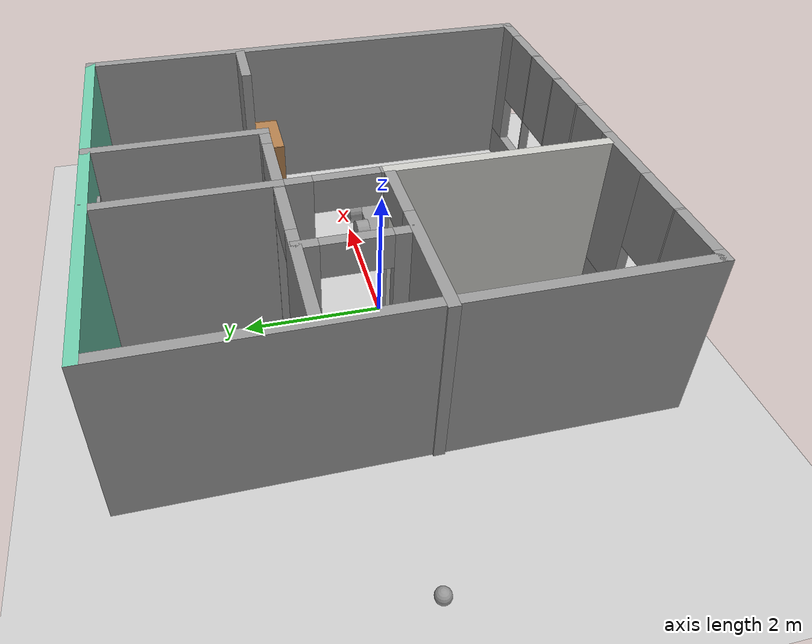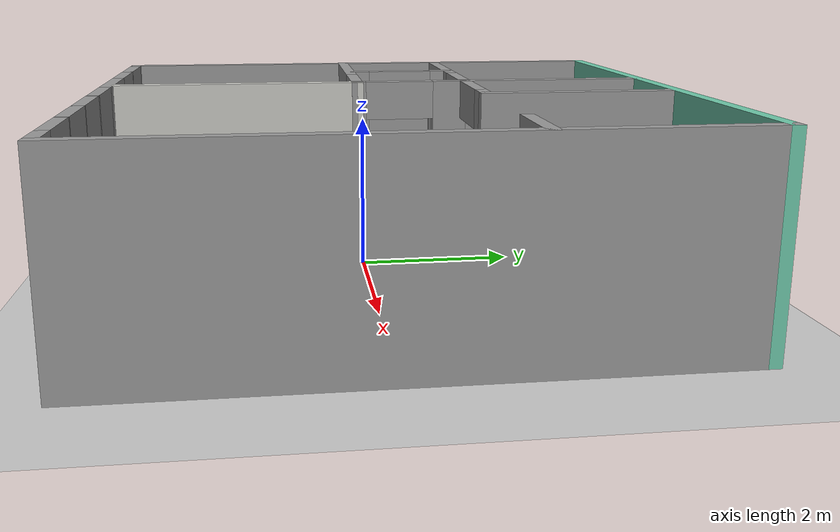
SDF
<sdf version="1.6">
 <world name="default">
  <plugin name="hello" filename="libhello.so"/>
  <plugin filename="libcollision_map_creator.so" name="collision_map_creator"/>
  <light name="sun" type="directional">
   <pose>0 0 10 0 -0 0</pose>
   <diffuse>0.8 0.8 0.8 1</diffuse>
   <specular>0.2 0.2 0.2 1</specular>
   <attenuation>
    <range>1000</range>
    <constant>0.9</constant>
    <linear>0.01</linear>
    <quadratic>0.001</quadratic>
   </attenuation>
   <direction>-0.5 0.1 -0.9</direction>
  </light>
  <model name="ground_plane">
   <static>1</static>
   <link name="link">
    <collision name="collision">
     <geometry><plane><normal>0 0 1</normal><size>100 100</size></plane></geometry>
     <surface>
      <contact><collide_bitmask>65535</collide_bitmask></contact>
      <friction><ode><mu>100</mu><mu2>50</mu2></ode></friction>
     </surface>
    </collision>
    <visual name="visual">
     <cast_shadows>0</cast_shadows>
     <geometry><plane><normal>0 0 1</normal><size>100 100</size></plane></geometry>
     <material>
      <script><uri>file://media/materials/scripts/gazebo.material</uri><name>Gazebo/Grey</name></script>
     </material>
    </visual>
   </link>
  </model>
  <gravity>0 0 -9.8</gravity>
  <magnetic_field>6e-06 2.3e-05 -4.2e-05</magnetic_field>
  <atmosphere type="adiabatic"/>
  <physics name="default_physics" default="0" type="ode">
   <max_step_size>0.001</max_step_size>
   <real_time_factor>1</real_time_factor>
   <real_time_update_rate>1000</real_time_update_rate>
  </physics>
  <scene><ambient>0.4 0.4 0.4 1</ambient><background>0.7 0.7 0.7 1</background><shadows>1</shadows></scene>
  <spherical_coordinates>
   <surface_model>EARTH_WGS84</surface_model>
   <latitude_deg>0</latitude_deg>
   <longitude_deg>0</longitude_deg>
   <elevation>0</elevation>
   <heading_deg>0</heading_deg>
  </spherical_coordinates>
  <model name="house">
   <pose>0.65385 0.2613 0 0 -0 0</pose>
   <link name="Door_0">
    <collision name="Door_0_Collision">
     <geometry><box><size>0.884877 0.2 2</size></box></geometry>
     <pose>0 0 1 0 -0 0</pose>
    </collision>
    <visual name="Door_0_Visual">
     <pose>0 0 1 0 -0 0</pose>
     <geometry><box><size>0.884877 0.2 2</size></box></geometry>
     <material>
      <script><uri>file://media/materials/scripts/gazebo.material</uri><name>Gazebo/Grey</name></script>
     </material>
    </visual>
    <pose>-0.176351 3.52946 0 0 -0 0</pose>
   </link>
   <link name="Wall_10">
    <pose>-1.96312 1.12976 0 0 -0 3.14159</pose>
    <visual name="Wall_10_Visual_0">
     <pose>-1.2103 0 1.25 0 -0 0</pose>
     <geometry><box><size>0.079392 0.15 2.5</size></box></geometry>
     <material>
      <script><uri>file://media/materials/scripts/gazebo.material</uri><name>Gazebo/Grey</name></script>
      <ambient>1 1 1 1</ambient>
     </material>
     <meta><layer>0</layer></meta>
    </visual>
    <collision name="Wall_10_Collision_0">
     <geometry><box><size>0.079392 0.15 2.5</size></box></geometry>
     <pose>-1.2103 0 1.25 0 -0 0</pose>
    </collision>
    <visual name="Wall_10_Visual_1">
     <pose>0.489696 0 1.25 0 -0 0</pose>
     <geometry><box><size>1.52061 0.15 2.5</size></box></geometry>
     <material>
      <script><uri>file://media/materials/scripts/gazebo.material</uri><name>Gazebo/Grey</name></script>
      <ambient>1 1 1 1</ambient>
     </material>
     <meta><layer>0</layer></meta>
    </visual>
    <collision name="Wall_10_Collision_1">
     <geometry><box><size>1.52061 0.15 2.5</size></box></geometry>
     <pose>0.489696 0 1.25 0 -0 0</pose>
    </collision>
    <visual name="Wall_10_Visual_2">
     <pose>-0.720608 0 2.25 0 -0 0</pose>
     <geometry><box><size>0.9 0.15 0.5</size></box></geometry>
     <material>
      <script><uri>file://media/materials/scripts/gazebo.material</uri><name>Gazebo/Grey</name></script>
      <ambient>1 1 1 1</ambient>
     </material>
     <meta><layer>0</layer></meta>
    </visual>
    <collision name="Wall_10_Collision_2">
     <geometry><box><size>0.9 0.15 0.5</size></box></geometry>
     <pose>-0.720608 0 2.25 0 -0 0</pose>
    </collision>
   </link>
   <link name="Wall_19">
    <collision name="Wall_19_Collision">
     <geometry><box><size>2.57 0.15 2.5</size></box></geometry>
     <pose>0 0 1.25 0 -0 0</pose>
    </collision>
    <visual name="Wall_19_Visual">
     <pose>0 0 1.25 0 -0 0</pose>
     <geometry><box><size>2.57 0.15 2.5</size></box></geometry>
     <material>
      <script><uri>file://media/materials/scripts/gazebo.material</uri><name>Gazebo/Grey</name></script>
      <ambient>1 1 1 1</ambient>
     </material>
     <meta><layer>0</layer></meta>
    </visual>
    <pose>-0.7005 2.33796 0 0 0 -1.5708</pose>
   </link>
   <link name="Wall_25">
    <pose>-0.106 1.12846 0 0 -0 0.000841</pose>
    <visual name="Wall_25_Visual_0">
     <pose>-0.594867 0 1.25 0 -0 0</pose>
     <geometry><box><size>0.149267 0.15 2.5</size></box></geometry>
     <material>
      <script><uri>file://media/materials/scripts/gazebo.material</uri><name>Gazebo/Grey</name></script>
      <ambient>1 1 1 1</ambient>
     </material>
     <meta><layer>0</layer></meta>
    </visual>
    <collision name="Wall_25_Collision_0">
     <geometry><box><size>0.149267 0.15 2.5</size></box></geometry>
     <pose>-0.594867 0 1.25 0 -0 0</pose>
    </collision>
    <visual name="Wall_25_Visual_1">
     <pose>0.532227 0 1.25 0 -0 0</pose>
     <geometry><box><size>0.274547 0.15 2.5</size></box></geometry>
     <material>
      <script><uri>file://media/materials/scripts/gazebo.material</uri><name>Gazebo/Grey</name></script>
      <ambient>1 1 1 1</ambient>
     </material>
     <meta><layer>0</layer></meta>
    </visual>
    <collision name="Wall_25_Collision_1">
     <geometry><box><size>0.274547 0.15 2.5</size></box></geometry>
     <pose>0.532227 0 1.25 0 -0 0</pose>
    </collision>
    <visual name="Wall_25_Visual_2">
     <pose>-0.06264 0 2.25 0 -0 0</pose>
     <geometry><box><size>0.915186 0.15 0.5</size></box></geometry>
     <material>
      <script><uri>file://media/materials/scripts/gazebo.material</uri><name>Gazebo/Grey</name></script>
      <ambient>1 1 1 1</ambient>
     </material>
     <meta><layer>0</layer></meta>
    </visual>
    <collision name="Wall_25_Collision_2">
     <geometry><box><size>0.915186 0.15 0.5</size></box></geometry>
     <pose>-0.06264 0 2.25 0 -0 0</pose>
    </collision>
   </link>
   <link name="Wall_27">
    <collision name="Wall_27_Collision">
     <geometry><box><size>6.75 0.15 2.5</size></box></geometry>
     <pose>0 0 1.25 0 -0 0</pose>
    </collision>
    <visual name="Wall_27_Visual">
     <pose>0 0 1.25 0 -0 0</pose>
     <geometry><box><size>6.75 0.15 2.5</size></box></geometry>
     <material>
      <script><uri>file://media/materials/scripts/gazebo.material</uri><name>Gazebo/Grey</name></script>
      <ambient>0.435294 0.796078 0.67451 1</ambient>
     </material>
     <meta><layer>0</layer></meta>
    </visual>
    <pose>0.0145 3.54996 0 0 -0 0</pose>
   </link>
   <link name="Wall_29">
    <collision name="Wall_29_Collision">
     <geometry><box><size>2.57 0.15 2.5</size></box></geometry>
     <pose>0 0 1.25 0 -0 0</pose>
    </collision>
    <visual name="Wall_29_Visual">
     <pose>0 0 1.25 0 -0 0</pose>
     <geometry><box><size>2.57 0.15 2.5</size></box></geometry>
     <material>
      <script><uri>file://media/materials/scripts/gazebo.material</uri><name>Gazebo/Grey</name></script>
      <ambient>1 1 1 1</ambient>
     </material>
     <meta><layer>0</layer></meta>
    </visual>
    <pose>0.632722 2.33459 0 0 0 -1.5708</pose>
   </link>
   <link name="Wall_3">
    <collision name="Wall_3_Collision">
     <geometry><box><size>7.25 0.15 2.5</size></box></geometry>
     <pose>0 0 1.25 0 -0 0</pose>
    </collision>
    <visual name="Wall_3_Visual">
     <pose>0 0 1.25 0 -0 0</pose>
     <geometry><box><size>7.25 0.15 2.5</size></box></geometry>
     <material>
      <script><uri>file://media/materials/scripts/gazebo.material</uri><name>Gazebo/Grey</name></script>
      <ambient>1 1 1 1</ambient>
     </material>
     <meta><layer>0</layer></meta>
    </visual>
    <pose>-3.28566 3.7e-05 0 0 0 -1.57084</pose>
   </link>
   <link name="Wall_31">
    <pose>-2.0005 -0.327039 0 0 -0 0</pose>
    <visual name="Wall_31_Visual_0">
     <pose>-0.516104 0 1.25 0 -0 0</pose>
     <geometry><box><size>1.74579 0.15 2.5</size></box></geometry>
     <material>
      <script><uri>file://media/materials/scripts/gazebo.material</uri><name>Gazebo/Grey</name></script>
      <ambient>1 1 1 1</ambient>
     </material>
     <meta><layer>0</layer></meta>
    </visual>
    <collision name="Wall_31_Collision_0">
     <geometry><box><size>1.74579 0.15 2.5</size></box></geometry>
     <pose>-0.516104 0 1.25 0 -0 0</pose>
    </collision>
    <visual name="Wall_31_Visual_1">
     <pose>1.3229 0 1.25 0 -0 0</pose>
     <geometry><box><size>0.132207 0.15 2.5</size></box></geometry>
     <material>
      <script><uri>file://media/materials/scripts/gazebo.material</uri><name>Gazebo/Grey</name></script>
      <ambient>1 1 1 1</ambient>
     </material>
     <meta><layer>0</layer></meta>
    </visual>
    <collision name="Wall_31_Collision_1">
     <geometry><box><size>0.132207 0.15 2.5</size></box></geometry>
     <pose>1.3229 0 1.25 0 -0 0</pose>
    </collision>
    <visual name="Wall_31_Visual_2">
     <pose>0.806793 0 2.25 0 -0 0</pose>
     <geometry><box><size>0.9 0.15 0.5</size></box></geometry>
     <material>
      <script><uri>file://media/materials/scripts/gazebo.material</uri><name>Gazebo/Grey</name></script>
      <ambient>1 1 1 1</ambient>
     </material>
     <meta><layer>0</layer></meta>
    </visual>
    <collision name="Wall_31_Collision_2">
     <geometry><box><size>0.9 0.15 0.5</size></box></geometry>
     <pose>0.806793 0 2.25 0 -0 0</pose>
    </collision>
   </link>
   <link name="Wall_35">
    <pose>-1.99683 0.434803 0 0 0 -1.5708</pose>
    <visual name="Wall_35_Visual_0">
     <pose>-0.585369 0 1.25 0 -0 0</pose>
     <geometry><box><size>0.329262 0.15 2.5</size></box></geometry>
     <material>
      <script><uri>file://media/materials/scripts/gazebo.material</uri><name>Gazebo/Grey</name></script>
      <ambient>1 1 1 1</ambient>
     </material>
     <meta><layer>0</layer></meta>
    </visual>
    <collision name="Wall_35_Collision_0">
     <geometry><box><size>0.329262 0.15 2.5</size></box></geometry>
     <pose>-0.585369 0 1.25 0 -0 0</pose>
    </collision>
    <visual name="Wall_35_Visual_1">
     <pose>0.614631 0 1.25 0 -0 0</pose>
     <geometry><box><size>0.270738 0.15 2.5</size></box></geometry>
     <material>
      <script><uri>file://media/materials/scripts/gazebo.material</uri><name>Gazebo/Grey</name></script>
      <ambient>1 1 1 1</ambient>
     </material>
     <meta><layer>0</layer></meta>
    </visual>
    <collision name="Wall_35_Collision_1">
     <geometry><box><size>0.270738 0.15 2.5</size></box></geometry>
     <pose>0.614631 0 1.25 0 -0 0</pose>
    </collision>
    <visual name="Wall_35_Visual_2">
     <pose>0.029262 0 2.25 0 -0 0</pose>
     <geometry><box><size>0.9 0.15 0.5</size></box></geometry>
     <material>
      <script><uri>file://media/materials/scripts/gazebo.material</uri><name>Gazebo/Grey</name></script>
      <ambient>1 1 1 1</ambient>
     </material>
     <meta><layer>0</layer></meta>
    </visual>
    <collision name="Wall_35_Collision_2">
     <geometry><box><size>0.9 0.15 0.5</size></box></geometry>
     <pose>0.029262 0 2.25 0 -0 0</pose>
    </collision>
   </link>
   <link name="Wall_37">
    <collision name="Wall_37_Collision">
     <geometry><box><size>3.25 0.15 2.5</size></box></geometry>
     <pose>0 0 1.25 0 -0 0</pose>
    </collision>
    <visual name="Wall_37_Visual">
     <pose>0 0 1.25 0 -0 0</pose>
     <geometry><box><size>3.25 0.15 2.5</size></box></geometry>
     <material>
      <script><uri>file://media/materials/scripts/gazebo.material</uri><name>Gazebo/CeilingTiled</name></script>
      <ambient>1 1 1 1</ambient>
     </material>
     <meta><layer>0</layer></meta>
    </visual>
    <pose>-0.6865 -1.87704 0 0 0 -1.5708</pose>
   </link>
   <link name="Wall_39">
    <collision name="Wall_39_Collision">
     <geometry><box><size>1 0.15 2.5</size></box></geometry>
     <pose>0 0 1.25 0 -0 0</pose>
    </collision>
    <visual name="Wall_39_Visual">
     <pose>0 0 1.25 0 -0 0</pose>
     <geometry><box><size>1 0.15 2.5</size></box></geometry>
     <material>
      <script><uri>file://media/materials/scripts/gazebo.material</uri><name>Gazebo/Grey</name></script>
      <ambient>1 1 1 1</ambient>
     </material>
     <meta><layer>0</layer></meta>
    </visual>
    <pose>2.88759 1.15517 0 0 -0 0</pose>
   </link>
   <link name="Wall_4">
    <pose>0.014343 -3.54996 0 0 0 -2.3e-05</pose>
    <visual name="Wall_4_Visual_0">
     <pose>-3.27185 0 1.25 0 -0 0</pose>
     <geometry><box><size>0.206299 0.15 2.5</size></box></geometry>
     <material>
      <script><uri>file://media/materials/scripts/gazebo.material</uri><name>Gazebo/Grey</name></script>
      <ambient>1 1 1 1</ambient>
     </material>
     <meta><layer>0</layer></meta>
    </visual>
    <collision name="Wall_4_Collision_0">
     <geometry><box><size>0.206299 0.15 2.5</size></box></geometry>
     <pose>-3.27185 0 1.25 0 -0 0</pose>
    </collision>
    <visual name="Wall_4_Visual_1">
     <pose>0.10315 0 0.25 0 -0 0</pose>
     <geometry><box><size>6.5437 0.15 0.5</size></box></geometry>
     <material>
      <script><uri>file://media/materials/scripts/gazebo.material</uri><name>Gazebo/Grey</name></script>
      <ambient>1 1 1 1</ambient>
     </material>
     <meta><layer>0</layer></meta>
    </visual>
    <collision name="Wall_4_Collision_1">
     <geometry><box><size>6.5437 0.15 0.5</size></box></geometry>
     <pose>0.10315 0 0.25 0 -0 0</pose>
    </collision>
    <visual name="Wall_4_Visual_2">
     <pose>-2.35468 0 1.5 0 -0 0</pose>
     <geometry><box><size>0.02804 0.15 2</size></box></geometry>
     <material>
      <script><uri>file://media/materials/scripts/gazebo.material</uri><name>Gazebo/Grey</name></script>
      <ambient>1 1 1 1</ambient>
     </material>
     <meta><layer>0</layer></meta>
    </visual>
    <collision name="Wall_4_Collision_2">
     <geometry><box><size>0.02804 0.15 2</size></box></geometry>
     <pose>-2.35468 0 1.5 0 -0 0</pose>
    </collision>
    <visual name="Wall_4_Visual_3">
     <pose>-1.00912 0 1.5 0 -0 0</pose>
     <geometry><box><size>1.06309 0.15 2</size></box></geometry>
     <material>
      <script><uri>file://media/materials/scripts/gazebo.material</uri><name>Gazebo/Grey</name></script>
      <ambient>1 1 1 1</ambient>
     </material>
     <meta><layer>0</layer></meta>
    </visual>
    <collision name="Wall_4_Collision_3">
     <geometry><box><size>1.06309 0.15 2</size></box></geometry>
     <pose>-1.00912 0 1.5 0 -0 0</pose>
    </collision>
    <visual name="Wall_4_Visual_4">
     <pose>0.347948 0 1.5 0 -0 0</pose>
     <geometry><box><size>0.05104 0.15 2</size></box></geometry>
     <material>
      <script><uri>file://media/materials/scripts/gazebo.material</uri><name>Gazebo/Grey</name></script>
      <ambient>1 1 1 1</ambient>
     </material>
     <meta><layer>0</layer></meta>
    </visual>
    <collision name="Wall_4_Collision_4">
     <geometry><box><size>0.05104 0.15 2</size></box></geometry>
     <pose>0.347948 0 1.5 0 -0 0</pose>
    </collision>
    <visual name="Wall_4_Visual_5">
     <pose>1.18749 0 1.5 0 -0 0</pose>
     <geometry><box><size>0.02804 0.15 2</size></box></geometry>
     <material>
      <script><uri>file://media/materials/scripts/gazebo.material</uri><name>Gazebo/Grey</name></script>
      <ambient>1 1 1 1</ambient>
     </material>
     <meta><layer>0</layer></meta>
    </visual>
    <collision name="Wall_4_Collision_5">
     <geometry><box><size>0.02804 0.15 2</size></box></geometry>
     <pose>1.18749 0 1.5 0 -0 0</pose>
    </collision>
    <visual name="Wall_4_Visual_6">
     <pose>2.01553 0 1.5 0 -0 0</pose>
     <geometry><box><size>0.028039 0.15 2</size></box></geometry>
     <material>
      <script><uri>file://media/materials/scripts/gazebo.material</uri><name>Gazebo/Grey</name></script>
      <ambient>1 1 1 1</ambient>
     </material>
     <meta><layer>0</layer></meta>
    </visual>
    <collision name="Wall_4_Collision_6">
     <geometry><box><size>0.028039 0.15 2</size></box></geometry>
     <pose>2.01553 0 1.5 0 -0 0</pose>
    </collision>
    <visual name="Wall_4_Visual_7">
     <pose>3.10227 0 1.5 0 -0 0</pose>
     <geometry><box><size>0.545453 0.15 2</size></box></geometry>
     <material>
      <script><uri>file://media/materials/scripts/gazebo.material</uri><name>Gazebo/Grey</name></script>
      <ambient>1 1 1 1</ambient>
     </material>
     <meta><layer>0</layer></meta>
    </visual>
    <collision name="Wall_4_Collision_7">
     <geometry><box><size>0.545453 0.15 2</size></box></geometry>
     <pose>3.10227 0 1.5 0 -0 0</pose>
    </collision>
    <visual name="Wall_4_Visual_8">
     <pose>-2.7687 0 1.9 0 -0 0</pose>
     <geometry><box><size>0.8 0.15 1.2</size></box></geometry>
     <material>
      <script><uri>file://media/materials/scripts/gazebo.material</uri><name>Gazebo/Grey</name></script>
      <ambient>1 1 1 1</ambient>
     </material>
     <meta><layer>0</layer></meta>
    </visual>
    <collision name="Wall_4_Collision_8">
     <geometry><box><size>0.8 0.15 1.2</size></box></geometry>
     <pose>-2.7687 0 1.9 0 -0 0</pose>
    </collision>
    <visual name="Wall_4_Visual_9">
     <pose>-1.94066 0 1.9 0 -0 0</pose>
     <geometry><box><size>0.8 0.15 1.2</size></box></geometry>
     <material>
      <script><uri>file://media/materials/scripts/gazebo.material</uri><name>Gazebo/Grey</name></script>
      <ambient>1 1 1 1</ambient>
     </material>
     <meta><layer>0</layer></meta>
    </visual>
    <collision name="Wall_4_Collision_9">
     <geometry><box><size>0.8 0.15 1.2</size></box></geometry>
     <pose>-1.94066 0 1.9 0 -0 0</pose>
    </collision>
    <visual name="Wall_4_Visual_10">
     <pose>-0.077572 0 1.9 0 -0 0</pose>
     <geometry><box><size>0.8 0.15 1.2</size></box></geometry>
     <material>
      <script><uri>file://media/materials/scripts/gazebo.material</uri><name>Gazebo/Grey</name></script>
      <ambient>1 1 1 1</ambient>
     </material>
     <meta><layer>0</layer></meta>
    </visual>
    <collision name="Wall_4_Collision_10">
     <geometry><box><size>0.8 0.15 1.2</size></box></geometry>
     <pose>-0.077572 0 1.9 0 -0 0</pose>
    </collision>
    <visual name="Wall_4_Visual_11">
     <pose>0.773468 0 1.9 0 -0 0</pose>
     <geometry><box><size>0.8 0.15 1.2</size></box></geometry>
     <material>
      <script><uri>file://media/materials/scripts/gazebo.material</uri><name>Gazebo/Grey</name></script>
      <ambient>1 1 1 1</ambient>
     </material>
     <meta><layer>0</layer></meta>
    </visual>
    <collision name="Wall_4_Collision_11">
     <geometry><box><size>0.8 0.15 1.2</size></box></geometry>
     <pose>0.773468 0 1.9 0 -0 0</pose>
    </collision>
    <visual name="Wall_4_Visual_12">
     <pose>1.60151 0 1.9 0 -0 0</pose>
     <geometry><box><size>0.8 0.15 1.2</size></box></geometry>
     <material>
      <script><uri>file://media/materials/scripts/gazebo.material</uri><name>Gazebo/Grey</name></script>
      <ambient>1 1 1 1</ambient>
     </material>
     <meta><layer>0</layer></meta>
    </visual>
    <collision name="Wall_4_Collision_12">
     <geometry><box><size>0.8 0.15 1.2</size></box></geometry>
     <pose>1.60151 0 1.9 0 -0 0</pose>
    </collision>
    <visual name="Wall_4_Visual_13">
     <pose>2.42955 0 1.9 0 -0 0</pose>
     <geometry><box><size>0.8 0.15 1.2</size></box></geometry>
     <material>
      <script><uri>file://media/materials/scripts/gazebo.material</uri><name>Gazebo/Grey</name></script>
      <ambient>1 1 1 1</ambient>
     </material>
     <meta><layer>0</layer></meta>
    </visual>
    <collision name="Wall_4_Collision_13">
     <geometry><box><size>0.8 0.15 1.2</size></box></geometry>
     <pose>2.42955 0 1.9 0 -0 0</pose>
    </collision>
   </link>
   <link name="Wall_42">
    <pose>-0.6935 0.400461 0 0 -0 1.58042</pose>
    <visual name="Wall_42_Visual_0">
     <pose>-0.709609 0 1.25 0 -0 0</pose>
     <geometry><box><size>0.18585 0.15 2.5</size></box></geometry>
     <material>
      <script><uri>file://media/materials/scripts/gazebo.material</uri><name>Gazebo/Grey</name></script>
      <ambient>1 1 1 1</ambient>
     </material>
     <meta><layer>0</layer></meta>
    </visual>
    <collision name="Wall_42_Collision_0">
     <geometry><box><size>0.18585 0.15 2.5</size></box></geometry>
     <pose>-0.709609 0 1.25 0 -0 0</pose>
    </collision>
    <visual name="Wall_42_Visual_1">
     <pose>0.542925 0 1.25 0 -0 0</pose>
     <geometry><box><size>0.519217 0.15 2.5</size></box></geometry>
     <material>
      <script><uri>file://media/materials/scripts/gazebo.material</uri><name>Gazebo/Grey</name></script>
      <ambient>1 1 1 1</ambient>
     </material>
     <meta><layer>0</layer></meta>
    </visual>
    <collision name="Wall_42_Collision_1">
     <geometry><box><size>0.519217 0.15 2.5</size></box></geometry>
     <pose>0.542925 0 1.25 0 -0 0</pose>
    </collision>
    <visual name="Wall_42_Visual_2">
     <pose>-0.166683 0 2.25 0 -0 0</pose>
     <geometry><box><size>0.9 0.15 0.5</size></box></geometry>
     <material>
      <script><uri>file://media/materials/scripts/gazebo.material</uri><name>Gazebo/Grey</name></script>
      <ambient>1 1 1 1</ambient>
     </material>
     <meta><layer>0</layer></meta>
    </visual>
    <collision name="Wall_42_Collision_2">
     <geometry><box><size>0.9 0.15 0.5</size></box></geometry>
     <pose>-0.166683 0 2.25 0 -0 0</pose>
    </collision>
   </link>
   <link name="Wall_5">
    <collision name="Wall_5_Collision">
     <geometry><box><size>7.25 0.15 2.5</size></box></geometry>
     <pose>0 0 1.25 0 -0 0</pose>
    </collision>
    <visual name="Wall_5_Visual">
     <pose>0 0 1.25 0 -0 0</pose>
     <geometry><box><size>7.25 0.15 2.5</size></box></geometry>
     <material>
      <script><uri>file://media/materials/scripts/gazebo.material</uri><name>Gazebo/Grey</name></script>
      <ambient>1 1 1 1</ambient>
     </material>
     <meta><layer>0</layer></meta>
    </visual>
    <pose>3.3145 -3.9e-05 0 0 -0 1.5708</pose>
   </link>
   <static>1</static>
  </model>
  <model name="robot">
   <link name="link_0">
    <pose>-0 -0 -0.016 0 -0 0</pose>
    <inertial>
     <mass>1</mass>
     <inertia>
      <ixx>0.166667</ixx>
      <ixy>0</ixy>
      <ixz>0</ixz>
      <iyy>0.166667</iyy>
      <iyz>0</iyz>
      <izz>0.166667</izz>
     </inertia>
    </inertial>
    <visual name="visual">
     <geometry><box><size>1 1 0.2</size></box></geometry>
     <material>
      <lighting>1</lighting>
      <script><uri>file://media/materials/scripts/gazebo.material</uri><name>Gazebo/Grey</name></script>
      <shader type="pixel"><normal_map>__default__</normal_map></shader>
      <ambient>0.3 0.3 0.3 1</ambient>
      <diffuse>0.7 0.7 0.7 1</diffuse>
      <specular>0.01 0.01 0.01 1</specular>
      <emissive>0 0 0 1</emissive>
     </material>
    </visual>
    <collision name="collision">
     <geometry><box><size>1 1 0.2</size></box></geometry>
     <surface>
      <friction>
       <ode><mu>1</mu><mu2>1</mu2><fdir1>0 0 0</fdir1><slip1>0</slip1><slip2>0</slip2></ode>
       <torsional>
        <coefficient>1</coefficient>
        <patch_radius>0</patch_radius>
        <surface_radius>0</surface_radius>
        <use_patch_radius>1</use_patch_radius>
        <ode><slip>0</slip></ode>
       </torsional>
      </friction>
      <bounce><restitution_coefficient>0</restitution_coefficient><threshold>1e+06</threshold></bounce>
      <contact>
       <collide_without_contact>0</collide_without_contact>
       <collide_without_contact_bitmask>1</collide_without_contact_bitmask>
       <collide_bitmask>1</collide_bitmask>
       <ode>
        <soft_cfm>0</soft_cfm>
        <soft_erp>0.2</soft_erp>
        <kp>1e+13</kp>
        <kd>1</kd>
        <max_vel>0.01</max_vel>
        <min_depth>0</min_depth>
       </ode>
       <bullet>
        <split_impulse>1</split_impulse>
        <split_impulse_penetration_threshold>-0.01</split_impulse_penetration_threshold>
        <soft_cfm>0</soft_cfm>
        <soft_erp>0.2</soft_erp>
        <kp>1e+13</kp>
        <kd>1</kd>
       </bullet>
      </contact>
     </surface>
    </collision>
   </link>
   <link name="link_1">
    <pose>-0.3 -0.600001 0.004 1.5708 -0 0</pose>
    <inertial>
     <mass>1</mass>
     <inertia><ixx>0.145833</ixx><ixy>0</ixy><ixz>0</ixz><iyy>0.145833</iyy><iyz>0</iyz><izz>0.125</izz></inertia>
    </inertial>
    <visual name="visual">
     <geometry><cylinder><radius>0.2</radius><length>0.2</length></cylinder></geometry>
     <material>
      <lighting>1</lighting>
      <script><uri>file://media/materials/scripts/gazebo.material</uri><name>Gazebo/Grey</name></script>
      <shader type="pixel"><normal_map>__default__</normal_map></shader>
      <ambient>0.3 0.3 0.3 1</ambient>
      <diffuse>0.7 0.7 0.7 1</diffuse>
      <specular>0.01 0.01 0.01 1</specular>
      <emissive>0 0 0 1</emissive>
     </material>
    </visual>
    <collision name="collision">
     <geometry><cylinder><radius>0.2</radius><length>0.2</length></cylinder></geometry>
     <surface>
      <friction>
       <ode><mu>1</mu><mu2>1</mu2><fdir1>0 0 0</fdir1><slip1>0</slip1><slip2>0</slip2></ode>
       <torsional>
        <coefficient>1</coefficient>
        <patch_radius>0</patch_radius>
        <surface_radius>0</surface_radius>
        <use_patch_radius>1</use_patch_radius>
        <ode><slip>0</slip></ode>
       </torsional>
      </friction>
      <bounce><restitution_coefficient>0</restitution_coefficient><threshold>1e+06</threshold></bounce>
      <contact>
       <collide_without_contact>0</collide_without_contact>
       <collide_without_contact_bitmask>1</collide_without_contact_bitmask>
       <collide_bitmask>1</collide_bitmask>
       <ode>
        <soft_cfm>0</soft_cfm>
        <soft_erp>0.2</soft_erp>
        <kp>1e+13</kp>
        <kd>1</kd>
        <max_vel>0.01</max_vel>
        <min_depth>0</min_depth>
       </ode>
       <bullet>
        <split_impulse>1</split_impulse>
        <split_impulse_penetration_threshold>-0.01</split_impulse_penetration_threshold>
        <soft_cfm>0</soft_cfm>
        <soft_erp>0.2</soft_erp>
        <kp>1e+13</kp>
        <kd>1</kd>
       </bullet>
      </contact>
     </surface>
    </collision>
   </link>
   <link name="link_1_clone">
    <pose>0.3 0.600001 0.004 1.5708 -0 0</pose>
    <inertial>
     <mass>1</mass>
     <inertia><ixx>0.145833</ixx><ixy>0</ixy><ixz>0</ixz><iyy>0.145833</iyy><iyz>0</iyz><izz>0.125</izz></inertia>
    </inertial>
    <visual name="visual">
     <geometry><cylinder><radius>0.2</radius><length>0.2</length></cylinder></geometry>
     <material>
      <lighting>1</lighting>
      <script><uri>file://media/materials/scripts/gazebo.material</uri><name>Gazebo/Grey</name></script>
      <shader type="pixel"><normal_map>__default__</normal_map></shader>
      <ambient>0.3 0.3 0.3 1</ambient>
      <diffuse>0.7 0.7 0.7 1</diffuse>
      <specular>0.01 0.01 0.01 1</specular>
      <emissive>0 0 0 1</emissive>
     </material>
    </visual>
    <collision name="collision">
     <geometry><cylinder><radius>0.2</radius><length>0.2</length></cylinder></geometry>
     <surface>
      <friction>
       <ode><mu>1</mu><mu2>1</mu2><fdir1>0 0 0</fdir1><slip1>0</slip1><slip2>0</slip2></ode>
       <torsional>
        <coefficient>1</coefficient>
        <patch_radius>0</patch_radius>
        <surface_radius>0</surface_radius>
        <use_patch_radius>1</use_patch_radius>
        <ode><slip>0</slip></ode>
       </torsional>
      </friction>
      <bounce><restitution_coefficient>0</restitution_coefficient><threshold>1e+06</threshold></bounce>
      <contact>
       <collide_without_contact>0</collide_without_contact>
       <collide_without_contact_bitmask>1</collide_without_contact_bitmask>
       <collide_bitmask>1</collide_bitmask>
       <ode>
        <soft_cfm>0</soft_cfm>
        <soft_erp>0.2</soft_erp>
        <kp>1e+13</kp>
        <kd>1</kd>
        <max_vel>0.01</max_vel>
        <min_depth>0</min_depth>
       </ode>
       <bullet>
        <split_impulse>1</split_impulse>
        <split_impulse_penetration_threshold>-0.01</split_impulse_penetration_threshold>
        <soft_cfm>0</soft_cfm>
        <soft_erp>0.2</soft_erp>
        <kp>1e+13</kp>
        <kd>1</kd>
       </bullet>
      </contact>
     </surface>
    </collision>
   </link>
   <link name="link_1_clone_0">
    <pose>0.3 -0.600001 0.004 1.5708 -0 0</pose>
    <inertial>
     <mass>1</mass>
     <inertia><ixx>0.145833</ixx><ixy>0</ixy><ixz>0</ixz><iyy>0.145833</iyy><iyz>0</iyz><izz>0.125</izz></inertia>
    </inertial>
    <visual name="visual">
     <geometry><cylinder><radius>0.2</radius><length>0.2</length></cylinder></geometry>
     <material>
      <lighting>1</lighting>
      <script><uri>file://media/materials/scripts/gazebo.material</uri><name>Gazebo/Grey</name></script>
      <shader type="pixel"><normal_map>__default__</normal_map></shader>
      <ambient>0.3 0.3 0.3 1</ambient>
      <diffuse>0.7 0.7 0.7 1</diffuse>
      <specular>0.01 0.01 0.01 1</specular>
      <emissive>0 0 0 1</emissive>
     </material>
    </visual>
    <collision name="collision">
     <geometry><cylinder><radius>0.2</radius><length>0.2</length></cylinder></geometry>
     <surface>
      <friction>
       <ode><mu>1</mu><mu2>1</mu2><fdir1>0 0 0</fdir1><slip1>0</slip1><slip2>0</slip2></ode>
       <torsional>
        <coefficient>1</coefficient>
        <patch_radius>0</patch_radius>
        <surface_radius>0</surface_radius>
        <use_patch_radius>1</use_patch_radius>
        <ode><slip>0</slip></ode>
       </torsional>
      </friction>
      <bounce><restitution_coefficient>0</restitution_coefficient><threshold>1e+06</threshold></bounce>
      <contact>
       <collide_without_contact>0</collide_without_contact>
       <collide_without_contact_bitmask>1</collide_without_contact_bitmask>
       <collide_bitmask>1</collide_bitmask>
       <ode>
        <soft_cfm>0</soft_cfm>
        <soft_erp>0.2</soft_erp>
        <kp>1e+13</kp>
        <kd>1</kd>
        <max_vel>0.01</max_vel>
        <min_depth>0</min_depth>
       </ode>
       <bullet>
        <split_impulse>1</split_impulse>
        <split_impulse_penetration_threshold>-0.01</split_impulse_penetration_threshold>
        <soft_cfm>0</soft_cfm>
        <soft_erp>0.2</soft_erp>
        <kp>1e+13</kp>
        <kd>1</kd>
       </bullet>
      </contact>
     </surface>
    </collision>
   </link>
   <link name="link_1_clone_1">
    <pose>-0.3 0.600001 0.004 1.5708 -0 0</pose>
    <inertial>
     <mass>1</mass>
     <inertia><ixx>0.145833</ixx><ixy>0</ixy><ixz>0</ixz><iyy>0.145833</iyy><iyz>0</iyz><izz>0.125</izz></inertia>
    </inertial>
    <visual name="visual">
     <geometry><cylinder><radius>0.2</radius><length>0.2</length></cylinder></geometry>
     <material>
      <lighting>1</lighting>
      <script><uri>file://media/materials/scripts/gazebo.material</uri><name>Gazebo/Grey</name></script>
      <shader type="pixel"><normal_map>__default__</normal_map></shader>
      <ambient>0.3 0.3 0.3 1</ambient>
      <diffuse>0.7 0.7 0.7 1</diffuse>
      <specular>0.01 0.01 0.01 1</specular>
      <emissive>0 0 0 1</emissive>
     </material>
    </visual>
    <collision name="collision">
     <geometry><cylinder><radius>0.2</radius><length>0.2</length></cylinder></geometry>
     <surface>
      <friction>
       <ode><mu>1</mu><mu2>1</mu2><fdir1>0 0 0</fdir1><slip1>0</slip1><slip2>0</slip2></ode>
       <torsional>
        <coefficient>1</coefficient>
        <patch_radius>0</patch_radius>
        <surface_radius>0</surface_radius>
        <use_patch_radius>1</use_patch_radius>
        <ode><slip>0</slip></ode>
       </torsional>
      </friction>
      <bounce><restitution_coefficient>0</restitution_coefficient><threshold>1e+06</threshold></bounce>
      <contact>
       <collide_without_contact>0</collide_without_contact>
       <collide_without_contact_bitmask>1</collide_without_contact_bitmask>
       <collide_bitmask>1</collide_bitmask>
       <ode>
        <soft_cfm>0</soft_cfm>
        <soft_erp>0.2</soft_erp>
        <kp>1e+13</kp>
        <kd>1</kd>
        <max_vel>0.01</max_vel>
        <min_depth>0</min_depth>
       </ode>
       <bullet>
        <split_impulse>1</split_impulse>
        <split_impulse_penetration_threshold>-0.01</split_impulse_penetration_threshold>
        <soft_cfm>0</soft_cfm>
        <soft_erp>0.2</soft_erp>
        <kp>1e+13</kp>
        <kd>1</kd>
       </bullet>
      </contact>
     </surface>
    </collision>
   </link>
   <joint name="link_0_JOINT_0" type="revolute">
    <parent>link_0</parent>
    <child>link_1_clone</child>
    <axis>
     <xyz>0 0 1</xyz>
     <use_parent_model_frame>0</use_parent_model_frame>
     <limit>
      <lower>-1.79769e+308</lower>
      <upper>1.79769e+308</upper>
      <effort>-1</effort>
      <velocity>-1</velocity>
     </limit>
     <dynamics>
      <spring_reference>0</spring_reference>
      <spring_stiffness>0</spring_stiffness>
      <damping>0</damping>
     </dynamics>
    </axis>
    <physics>
     <ode><limit><cfm>0</cfm><erp>0.2</erp></limit><suspension><cfm>0</cfm><erp>0.2</erp></suspension></ode>
    </physics>
   </joint>
   <joint name="link_0_JOINT_1" type="revolute">
    <parent>link_0</parent>
    <child>link_1_clone_0</child>
    <axis>
     <xyz>0 0 1</xyz>
     <use_parent_model_frame>0</use_parent_model_frame>
     <limit>
      <lower>-1.79769e+308</lower>
      <upper>1.79769e+308</upper>
      <effort>-1</effort>
      <velocity>-1</velocity>
     </limit>
     <dynamics>
      <spring_reference>0</spring_reference>
      <spring_stiffness>0</spring_stiffness>
      <damping>0</damping>
     </dynamics>
    </axis>
    <physics>
     <ode><limit><cfm>0</cfm><erp>0.2</erp></limit><suspension><cfm>0</cfm><erp>0.2</erp></suspension></ode>
    </physics>
   </joint>
   <joint name="link_0_JOINT_2" type="revolute">
    <parent>link_0</parent>
    <child>link_1</child>
    <axis>
     <xyz>1 0 0</xyz>
     <use_parent_model_frame>0</use_parent_model_frame>
     <limit>
      <lower>-1.79769e+308</lower>
      <upper>1.79769e+308</upper>
      <effort>-1</effort>
      <velocity>-1</velocity>
     </limit>
     <dynamics>
      <spring_reference>0</spring_reference>
      <spring_stiffness>0</spring_stiffness>
      <damping>0</damping>
     </dynamics>
    </axis>
    <physics>
     <ode><limit><cfm>0</cfm><erp>0.2</erp></limit><suspension><cfm>0</cfm><erp>0.2</erp></suspension></ode>
    </physics>
   </joint>
   <joint name="link_0_JOINT_3" type="revolute">
    <parent>link_0</parent>
    <child>link_1</child>
    <axis>
     <xyz>0 0 1</xyz>
     <use_parent_model_frame>0</use_parent_model_frame>
     <limit>
      <lower>-1.79769e+308</lower>
      <upper>1.79769e+308</upper>
      <effort>-1</effort>
      <velocity>-1</velocity>
     </limit>
     <dynamics>
      <spring_reference>0</spring_reference>
      <spring_stiffness>0</spring_stiffness>
      <damping>0</damping>
     </dynamics>
    </axis>
    <physics>
     <ode><limit><cfm>0</cfm><erp>0.2</erp></limit><suspension><cfm>0</cfm><erp>0.2</erp></suspension></ode>
    </physics>
   </joint>
   <joint name="link_0_JOINT_5" type="revolute">
    <parent>link_0</parent>
    <child>link_1_clone_1</child>
    <axis>
     <xyz>0 0 1</xyz>
     <use_parent_model_frame>0</use_parent_model_frame>
     <limit>
      <lower>-1.79769e+308</lower>
      <upper>1.79769e+308</upper>
      <effort>-1</effort>
      <velocity>-1</velocity>
     </limit>
     <dynamics>
      <spring_reference>0</spring_reference>
      <spring_stiffness>0</spring_stiffness>
      <damping>0</damping>
     </dynamics>
    </axis>
    <physics>
     <ode><limit><cfm>0</cfm><erp>0.2</erp></limit><suspension><cfm>0</cfm><erp>0.2</erp></suspension></ode>
    </physics>
   </joint>
   <static>0</static>
   <pose>1.94114 -0.729751 0.196 0 -0 0.004091</pose>
  </model>
  <model name="robot_clone">
   <link name="link_0">
    <pose>-0 -0 -0.016 0 -0 0</pose>
    <inertial>
     <mass>1</mass>
     <inertia>
      <ixx>0.166667</ixx>
      <ixy>0</ixy>
      <ixz>0</ixz>
      <iyy>0.166667</iyy>
      <iyz>0</iyz>
      <izz>0.166667</izz>
     </inertia>
    </inertial>
    <visual name="visual">
     <geometry><box><size>1 1 0.2</size></box></geometry>
     <material>
      <lighting>1</lighting>
      <script><uri>file://media/materials/scripts/gazebo.material</uri><name>Gazebo/Grey</name></script>
      <shader type="pixel"><normal_map>__default__</normal_map></shader>
      <ambient>0.3 0.3 0.3 1</ambient>
      <diffuse>0.7 0.7 0.7 1</diffuse>
      <specular>0.01 0.01 0.01 1</specular>
      <emissive>0 0 0 1</emissive>
     </material>
    </visual>
    <collision name="collision">
     <geometry><box><size>1 1 0.2</size></box></geometry>
     <surface>
      <friction>
       <ode><mu>1</mu><mu2>1</mu2><fdir1>0 0 0</fdir1><slip1>0</slip1><slip2>0</slip2></ode>
       <torsional>
        <coefficient>1</coefficient>
        <patch_radius>0</patch_radius>
        <surface_radius>0</surface_radius>
        <use_patch_radius>1</use_patch_radius>
        <ode><slip>0</slip></ode>
       </torsional>
      </friction>
      <bounce><restitution_coefficient>0</restitution_coefficient><threshold>1e+06</threshold></bounce>
      <contact>
       <collide_without_contact>0</collide_without_contact>
       <collide_without_contact_bitmask>1</collide_without_contact_bitmask>
       <collide_bitmask>1</collide_bitmask>
       <ode>
        <soft_cfm>0</soft_cfm>
        <soft_erp>0.2</soft_erp>
        <kp>1e+13</kp>
        <kd>1</kd>
        <max_vel>0.01</max_vel>
        <min_depth>0</min_depth>
       </ode>
       <bullet>
        <split_impulse>1</split_impulse>
        <split_impulse_penetration_threshold>-0.01</split_impulse_penetration_threshold>
        <soft_cfm>0</soft_cfm>
        <soft_erp>0.2</soft_erp>
        <kp>1e+13</kp>
        <kd>1</kd>
       </bullet>
      </contact>
     </surface>
    </collision>
   </link>
   <link name="link_1">
    <pose>-0.3 -0.600001 0.004 1.5708 -0 0</pose>
    <inertial>
     <mass>1</mass>
     <inertia><ixx>0.145833</ixx><ixy>0</ixy><ixz>0</ixz><iyy>0.145833</iyy><iyz>0</iyz><izz>0.125</izz></inertia>
    </inertial>
    <visual name="visual">
     <geometry><cylinder><radius>0.2</radius><length>0.2</length></cylinder></geometry>
     <material>
      <lighting>1</lighting>
      <script><uri>file://media/materials/scripts/gazebo.material</uri><name>Gazebo/Grey</name></script>
      <shader type="pixel"><normal_map>__default__</normal_map></shader>
      <ambient>0.3 0.3 0.3 1</ambient>
      <diffuse>0.7 0.7 0.7 1</diffuse>
      <specular>0.01 0.01 0.01 1</specular>
      <emissive>0 0 0 1</emissive>
     </material>
    </visual>
    <collision name="collision">
     <geometry><cylinder><radius>0.2</radius><length>0.2</length></cylinder></geometry>
     <surface>
      <friction>
       <ode><mu>1</mu><mu2>1</mu2><fdir1>0 0 0</fdir1><slip1>0</slip1><slip2>0</slip2></ode>
       <torsional>
        <coefficient>1</coefficient>
        <patch_radius>0</patch_radius>
        <surface_radius>0</surface_radius>
        <use_patch_radius>1</use_patch_radius>
        <ode><slip>0</slip></ode>
       </torsional>
      </friction>
      <bounce><restitution_coefficient>0</restitution_coefficient><threshold>1e+06</threshold></bounce>
      <contact>
       <collide_without_contact>0</collide_without_contact>
       <collide_without_contact_bitmask>1</collide_without_contact_bitmask>
       <collide_bitmask>1</collide_bitmask>
       <ode>
        <soft_cfm>0</soft_cfm>
        <soft_erp>0.2</soft_erp>
        <kp>1e+13</kp>
        <kd>1</kd>
        <max_vel>0.01</max_vel>
        <min_depth>0</min_depth>
       </ode>
       <bullet>
        <split_impulse>1</split_impulse>
        <split_impulse_penetration_threshold>-0.01</split_impulse_penetration_threshold>
        <soft_cfm>0</soft_cfm>
        <soft_erp>0.2</soft_erp>
        <kp>1e+13</kp>
        <kd>1</kd>
       </bullet>
      </contact>
     </surface>
    </collision>
   </link>
   <link name="link_1_clone">
    <pose>0.3 0.600001 0.004 1.5708 -0 0</pose>
    <inertial>
     <mass>1</mass>
     <inertia><ixx>0.145833</ixx><ixy>0</ixy><ixz>0</ixz><iyy>0.145833</iyy><iyz>0</iyz><izz>0.125</izz></inertia>
    </inertial>
    <visual name="visual">
     <geometry><cylinder><radius>0.2</radius><length>0.2</length></cylinder></geometry>
     <material>
      <lighting>1</lighting>
      <script><uri>file://media/materials/scripts/gazebo.material</uri><name>Gazebo/Grey</name></script>
      <shader type="pixel"><normal_map>__default__</normal_map></shader>
      <ambient>0.3 0.3 0.3 1</ambient>
      <diffuse>0.7 0.7 0.7 1</diffuse>
      <specular>0.01 0.01 0.01 1</specular>
      <emissive>0 0 0 1</emissive>
     </material>
    </visual>
    <collision name="collision">
     <geometry><cylinder><radius>0.2</radius><length>0.2</length></cylinder></geometry>
     <surface>
      <friction>
       <ode><mu>1</mu><mu2>1</mu2><fdir1>0 0 0</fdir1><slip1>0</slip1><slip2>0</slip2></ode>
       <torsional>
        <coefficient>1</coefficient>
        <patch_radius>0</patch_radius>
        <surface_radius>0</surface_radius>
        <use_patch_radius>1</use_patch_radius>
        <ode><slip>0</slip></ode>
       </torsional>
      </friction>
      <bounce><restitution_coefficient>0</restitution_coefficient><threshold>1e+06</threshold></bounce>
      <contact>
       <collide_without_contact>0</collide_without_contact>
       <collide_without_contact_bitmask>1</collide_without_contact_bitmask>
       <collide_bitmask>1</collide_bitmask>
       <ode>
        <soft_cfm>0</soft_cfm>
        <soft_erp>0.2</soft_erp>
        <kp>1e+13</kp>
        <kd>1</kd>
        <max_vel>0.01</max_vel>
        <min_depth>0</min_depth>
       </ode>
       <bullet>
        <split_impulse>1</split_impulse>
        <split_impulse_penetration_threshold>-0.01</split_impulse_penetration_threshold>
        <soft_cfm>0</soft_cfm>
        <soft_erp>0.2</soft_erp>
        <kp>1e+13</kp>
        <kd>1</kd>
       </bullet>
      </contact>
     </surface>
    </collision>
   </link>
   <link name="link_1_clone_0">
    <pose>0.3 -0.600001 0.004 1.5708 -0 0</pose>
    <inertial>
     <mass>1</mass>
     <inertia><ixx>0.145833</ixx><ixy>0</ixy><ixz>0</ixz><iyy>0.145833</iyy><iyz>0</iyz><izz>0.125</izz></inertia>
    </inertial>
    <visual name="visual">
     <geometry><cylinder><radius>0.2</radius><length>0.2</length></cylinder></geometry>
     <material>
      <lighting>1</lighting>
      <script><uri>file://media/materials/scripts/gazebo.material</uri><name>Gazebo/Grey</name></script>
      <shader type="pixel"><normal_map>__default__</normal_map></shader>
      <ambient>0.3 0.3 0.3 1</ambient>
      <diffuse>0.7 0.7 0.7 1</diffuse>
      <specular>0.01 0.01 0.01 1</specular>
      <emissive>0 0 0 1</emissive>
     </material>
    </visual>
    <collision name="collision">
     <geometry><cylinder><radius>0.2</radius><length>0.2</length></cylinder></geometry>
     <surface>
      <friction>
       <ode><mu>1</mu><mu2>1</mu2><fdir1>0 0 0</fdir1><slip1>0</slip1><slip2>0</slip2></ode>
       <torsional>
        <coefficient>1</coefficient>
        <patch_radius>0</patch_radius>
        <surface_radius>0</surface_radius>
        <use_patch_radius>1</use_patch_radius>
        <ode><slip>0</slip></ode>
       </torsional>
      </friction>
      <bounce><restitution_coefficient>0</restitution_coefficient><threshold>1e+06</threshold></bounce>
      <contact>
       <collide_without_contact>0</collide_without_contact>
       <collide_without_contact_bitmask>1</collide_without_contact_bitmask>
       <collide_bitmask>1</collide_bitmask>
       <ode>
        <soft_cfm>0</soft_cfm>
        <soft_erp>0.2</soft_erp>
        <kp>1e+13</kp>
        <kd>1</kd>
        <max_vel>0.01</max_vel>
        <min_depth>0</min_depth>
       </ode>
       <bullet>
        <split_impulse>1</split_impulse>
        <split_impulse_penetration_threshold>-0.01</split_impulse_penetration_threshold>
        <soft_cfm>0</soft_cfm>
        <soft_erp>0.2</soft_erp>
        <kp>1e+13</kp>
        <kd>1</kd>
       </bullet>
      </contact>
     </surface>
    </collision>
   </link>
   <link name="link_1_clone_1">
    <pose>-0.3 0.600001 0.004 1.5708 -0 0</pose>
    <inertial>
     <mass>1</mass>
     <inertia><ixx>0.145833</ixx><ixy>0</ixy><ixz>0</ixz><iyy>0.145833</iyy><iyz>0</iyz><izz>0.125</izz></inertia>
    </inertial>
    <visual name="visual">
     <geometry><cylinder><radius>0.2</radius><length>0.2</length></cylinder></geometry>
     <material>
      <lighting>1</lighting>
      <script><uri>file://media/materials/scripts/gazebo.material</uri><name>Gazebo/Grey</name></script>
      <shader type="pixel"><normal_map>__default__</normal_map></shader>
      <ambient>0.3 0.3 0.3 1</ambient>
      <diffuse>0.7 0.7 0.7 1</diffuse>
      <specular>0.01 0.01 0.01 1</specular>
      <emissive>0 0 0 1</emissive>
     </material>
    </visual>
    <collision name="collision">
     <geometry><cylinder><radius>0.2</radius><length>0.2</length></cylinder></geometry>
     <surface>
      <friction>
       <ode><mu>1</mu><mu2>1</mu2><fdir1>0 0 0</fdir1><slip1>0</slip1><slip2>0</slip2></ode>
       <torsional>
        <coefficient>1</coefficient>
        <patch_radius>0</patch_radius>
        <surface_radius>0</surface_radius>
        <use_patch_radius>1</use_patch_radius>
        <ode><slip>0</slip></ode>
       </torsional>
      </friction>
      <bounce><restitution_coefficient>0</restitution_coefficient><threshold>1e+06</threshold></bounce>
      <contact>
       <collide_without_contact>0</collide_without_contact>
       <collide_without_contact_bitmask>1</collide_without_contact_bitmask>
       <collide_bitmask>1</collide_bitmask>
       <ode>
        <soft_cfm>0</soft_cfm>
        <soft_erp>0.2</soft_erp>
        <kp>1e+13</kp>
        <kd>1</kd>
        <max_vel>0.01</max_vel>
        <min_depth>0</min_depth>
       </ode>
       <bullet>
        <split_impulse>1</split_impulse>
        <split_impulse_penetration_threshold>-0.01</split_impulse_penetration_threshold>
        <soft_cfm>0</soft_cfm>
        <soft_erp>0.2</soft_erp>
        <kp>1e+13</kp>
        <kd>1</kd>
       </bullet>
      </contact>
     </surface>
    </collision>
   </link>
   <joint name="link_0_JOINT_0" type="revolute">
    <parent>link_0</parent>
    <child>link_1_clone</child>
    <axis>
     <xyz>0 0 1</xyz>
     <use_parent_model_frame>0</use_parent_model_frame>
     <limit>
      <lower>-1.79769e+308</lower>
      <upper>1.79769e+308</upper>
      <effort>-1</effort>
      <velocity>-1</velocity>
     </limit>
     <dynamics>
      <spring_reference>0</spring_reference>
      <spring_stiffness>0</spring_stiffness>
      <damping>0</damping>
     </dynamics>
    </axis>
    <physics>
     <ode><limit><cfm>0</cfm><erp>0.2</erp></limit><suspension><cfm>0</cfm><erp>0.2</erp></suspension></ode>
    </physics>
   </joint>
   <joint name="link_0_JOINT_1" type="revolute">
    <parent>link_0</parent>
    <child>link_1_clone_0</child>
    <axis>
     <xyz>0 0 1</xyz>
     <use_parent_model_frame>0</use_parent_model_frame>
     <limit>
      <lower>-1.79769e+308</lower>
      <upper>1.79769e+308</upper>
      <effort>-1</effort>
      <velocity>-1</velocity>
     </limit>
     <dynamics>
      <spring_reference>0</spring_reference>
      <spring_stiffness>0</spring_stiffness>
      <damping>0</damping>
     </dynamics>
    </axis>
    <physics>
     <ode><limit><cfm>0</cfm><erp>0.2</erp></limit><suspension><cfm>0</cfm><erp>0.2</erp></suspension></ode>
    </physics>
   </joint>
   <joint name="link_0_JOINT_2" type="revolute">
    <parent>link_0</parent>
    <child>link_1</child>
    <axis>
     <xyz>1 0 0</xyz>
     <use_parent_model_frame>0</use_parent_model_frame>
     <limit>
      <lower>-1.79769e+308</lower>
      <upper>1.79769e+308</upper>
      <effort>-1</effort>
      <velocity>-1</velocity>
     </limit>
     <dynamics>
      <spring_reference>0</spring_reference>
      <spring_stiffness>0</spring_stiffness>
      <damping>0</damping>
     </dynamics>
    </axis>
    <physics>
     <ode><limit><cfm>0</cfm><erp>0.2</erp></limit><suspension><cfm>0</cfm><erp>0.2</erp></suspension></ode>
    </physics>
   </joint>
   <joint name="link_0_JOINT_3" type="revolute">
    <parent>link_0</parent>
    <child>link_1</child>
    <axis>
     <xyz>0 0 1</xyz>
     <use_parent_model_frame>0</use_parent_model_frame>
     <limit>
      <lower>-1.79769e+308</lower>
      <upper>1.79769e+308</upper>
      <effort>-1</effort>
      <velocity>-1</velocity>
     </limit>
     <dynamics>
      <spring_reference>0</spring_reference>
      <spring_stiffness>0</spring_stiffness>
      <damping>0</damping>
     </dynamics>
    </axis>
    <physics>
     <ode><limit><cfm>0</cfm><erp>0.2</erp></limit><suspension><cfm>0</cfm><erp>0.2</erp></suspension></ode>
    </physics>
   </joint>
   <joint name="link_0_JOINT_5" type="revolute">
    <parent>link_0</parent>
    <child>link_1_clone_1</child>
    <axis>
     <xyz>0 0 1</xyz>
     <use_parent_model_frame>0</use_parent_model_frame>
     <limit>
      <lower>-1.79769e+308</lower>
      <upper>1.79769e+308</upper>
      <effort>-1</effort>
      <velocity>-1</velocity>
     </limit>
     <dynamics>
      <spring_reference>0</spring_reference>
      <spring_stiffness>0</spring_stiffness>
      <damping>0</damping>
     </dynamics>
    </axis>
    <physics>
     <ode><limit><cfm>0</cfm><erp>0.2</erp></limit><suspension><cfm>0</cfm><erp>0.2</erp></suspension></ode>
    </physics>
   </joint>
   <static>0</static>
   <pose>-1.66404 -1.13016 0.196 0 -0 0.004091</pose>
  </model>
  <model name="beer">
   <link name="link">
    <pose>0 0 0.115 0 -0 0</pose>
    <inertial>
     <mass>0.39</mass>
     <inertia><ixx>0.00058</ixx><ixy>0</ixy><ixz>0</ixz><iyy>0.00058</iyy><iyz>0</iyz><izz>0.00019</izz></inertia>
    </inertial>
    <collision name="collision">
     <geometry><cylinder><radius>0.055</radius><length>0.23</length></cylinder></geometry>
    </collision>
    <visual name="visual">
     <geometry><cylinder><radius>0.055</radius><length>0.23</length></cylinder></geometry>
     <material>
      <script>
       <uri>model://beer/materials/scripts</uri>
       <uri>model://beer/materials/textures</uri>
       <name>Beer/Diffuse</name>
      </script>
     </material>
    </visual>
   </link>
   <pose>0.414802 1.10133 -7e-06 -1e-06 -0 -2e-06</pose>
  </model>
  <model name="bookshelf">
   <static>1</static>
   <link name="link">
    <inertial><mass>1</mass></inertial>
    <collision name="back">
     <pose>0 0.005 0.6 0 -0 0</pose>
     <geometry><box><size>0.9 0.01 1.2</size></box></geometry>
    </collision>
    <visual name="visual1">
     <pose>0 0.005 0.6 0 -0 0</pose>
     <geometry><box><size>0.9 0.01 1.2</size></box></geometry>
     <material>
      <script><uri>file://media/materials/scripts/gazebo.material</uri><name>Gazebo/Wood</name></script>
     </material>
    </visual>
    <collision name="left_side">
     <pose>0.45 -0.195 0.6 0 -0 0</pose>
     <geometry><box><size>0.02 0.4 1.2</size></box></geometry>
    </collision>
    <visual name="visual2">
     <pose>0.45 -0.195 0.6 0 -0 0</pose>
     <geometry><box><size>0.02 0.4 1.2</size></box></geometry>
     <material>
      <script><uri>file://media/materials/scripts/gazebo.material</uri><name>Gazebo/Wood</name></script>
     </material>
    </visual>
    <collision name="right_side">
     <pose>-0.45 -0.195 0.6 0 -0 0</pose>
     <geometry><box><size>0.02 0.4 1.2</size></box></geometry>
    </collision>
    <visual name="visual3">
     <pose>-0.45 -0.195 0.6 0 -0 0</pose>
     <geometry><box><size>0.02 0.4 1.2</size></box></geometry>
     <material>
      <script><uri>file://media/materials/scripts/gazebo.material</uri><name>Gazebo/Wood</name></script>
     </material>
    </visual>
    <collision name="bottom">
     <pose>0 -0.195 0.03 0 -0 0</pose>
     <geometry><box><size>0.88 0.4 0.06</size></box></geometry>
    </collision>
    <visual name="visual4">
     <pose>0 -0.195 0.03 0 -0 0</pose>
     <geometry><box><size>0.88 0.4 0.06</size></box></geometry>
     <material>
      <script><uri>file://media/materials/scripts/gazebo.material</uri><name>Gazebo/Wood</name></script>
     </material>
    </visual>
    <collision name="top">
     <pose>0 -0.195 1.19 0 -0 0</pose>
     <geometry><box><size>0.88 0.4 0.02</size></box></geometry>
    </collision>
    <visual name="visual5">
     <pose>0 -0.195 1.19 0 -0 0</pose>
     <geometry><box><size>0.88 0.4 0.02</size></box></geometry>
     <material>
      <script><uri>file://media/materials/scripts/gazebo.material</uri><name>Gazebo/Wood</name></script>
     </material>
    </visual>
    <collision name="low_shelf">
     <pose>0 -0.195 0.43 0 -0 0</pose>
     <geometry><box><size>0.88 0.4 0.02</size></box></geometry>
    </collision>
    <visual name="visual6">
     <pose>0 -0.195 0.43 0 -0 0</pose>
     <geometry><box><size>0.88 0.4 0.02</size></box></geometry>
     <material>
      <script><uri>file://media/materials/scripts/gazebo.material</uri><name>Gazebo/Wood</name></script>
     </material>
    </visual>
    <collision name="high_shelf">
     <pose>0 -0.195 0.8 0 -0 0</pose>
     <geometry><box><size>0.88 0.4 0.02</size></box></geometry>
    </collision>
    <visual name="visual7">
     <pose>0 -0.195 0.8 0 -0 0</pose>
     <geometry><box><size>0.88 0.4 0.02</size></box></geometry>
     <material>
      <script><uri>file://media/materials/scripts/gazebo.material</uri><name>Gazebo/Wood</name></script>
     </material>
    </visual>
   </link>
   <pose>3.38758 1.2973 0 0 -0 0</pose>
  </model>
  <model name="my_ball">
   <link name="link_0">
    <inertial>
     <mass>1</mass>
     <inertia><ixx>0.1</ixx><ixy>0</ixy><ixz>0</ixz><iyy>0.1</iyy><iyz>0</iyz><izz>0.1</izz></inertia>
    </inertial>
    <visual name="visual">
     <geometry><sphere><radius>0.1</radius></sphere></geometry>
     <material>
      <lighting>1</lighting>
      <script><uri>file://media/materials/scripts/gazebo.material</uri><name>Gazebo/Grey</name></script>
      <shader type="pixel"><normal_map>__default__</normal_map></shader>
      <ambient>1 1 1 1</ambient>
      <diffuse>1 1 1 1</diffuse>
      <specular>1 1 1 1</specular>
      <emissive>1 1 1 1</emissive>
     </material>
    </visual>
    <collision name="collision">
     <geometry><sphere><radius>0.1</radius></sphere></geometry>
     <surface>
      <friction>
       <ode><mu>1</mu><mu2>1</mu2><fdir1>0 0 0</fdir1><slip1>0</slip1><slip2>0</slip2></ode>
       <torsional>
        <coefficient>1</coefficient>
        <patch_radius>0</patch_radius>
        <surface_radius>0</surface_radius>
        <use_patch_radius>1</use_patch_radius>
        <ode><slip>0</slip></ode>
       </torsional>
      </friction>
      <bounce><restitution_coefficient>0</restitution_coefficient><threshold>1e+06</threshold></bounce>
      <contact>
       <collide_without_contact>0</collide_without_contact>
       <collide_without_contact_bitmask>1</collide_without_contact_bitmask>
       <collide_bitmask>1</collide_bitmask>
       <ode>
        <soft_cfm>0</soft_cfm>
        <soft_erp>0.2</soft_erp>
        <kp>1e+13</kp>
        <kd>1</kd>
        <max_vel>0.01</max_vel>
        <min_depth>0</min_depth>
       </ode>
       <bullet>
        <split_impulse>1</split_impulse>
        <split_impulse_penetration_threshold>-0.01</split_impulse_penetration_threshold>
        <soft_cfm>0</soft_cfm>
        <soft_erp>0.2</soft_erp>
        <kp>1e+13</kp>
        <kd>1</kd>
       </bullet>
      </contact>
     </surface>
    </collision>
   </link>
   <static>0</static>
   <pose>-4.5116 0.463644 0.1 0 -0 0</pose>
  </model>
 </world>
</sdf>
